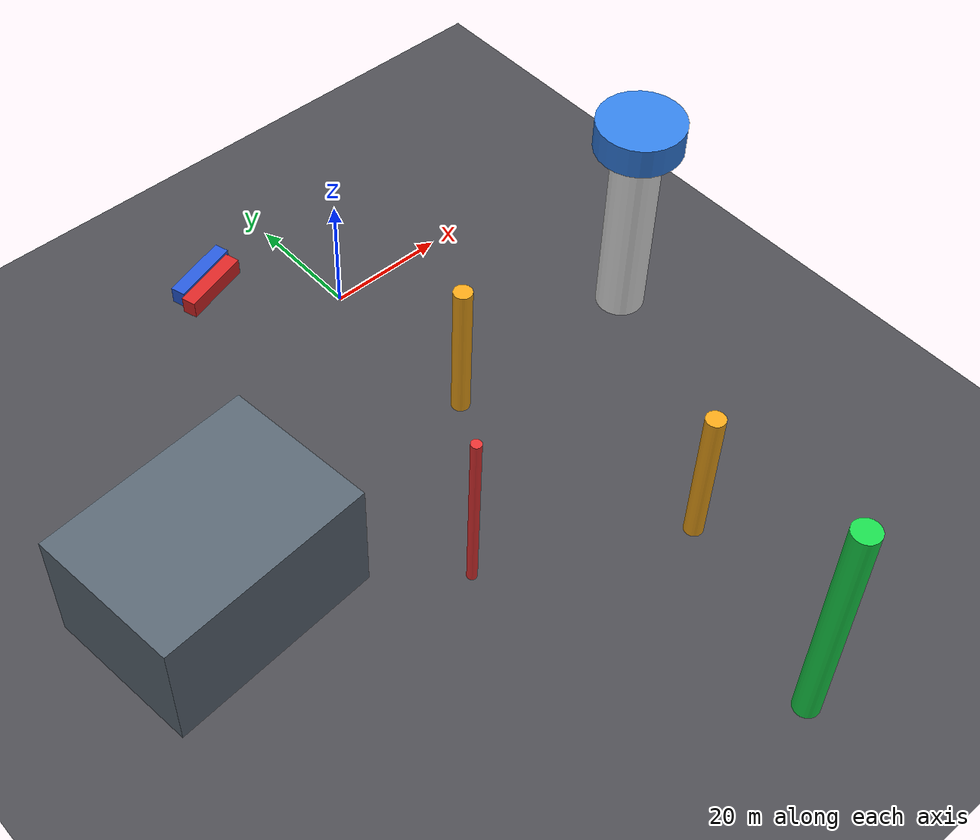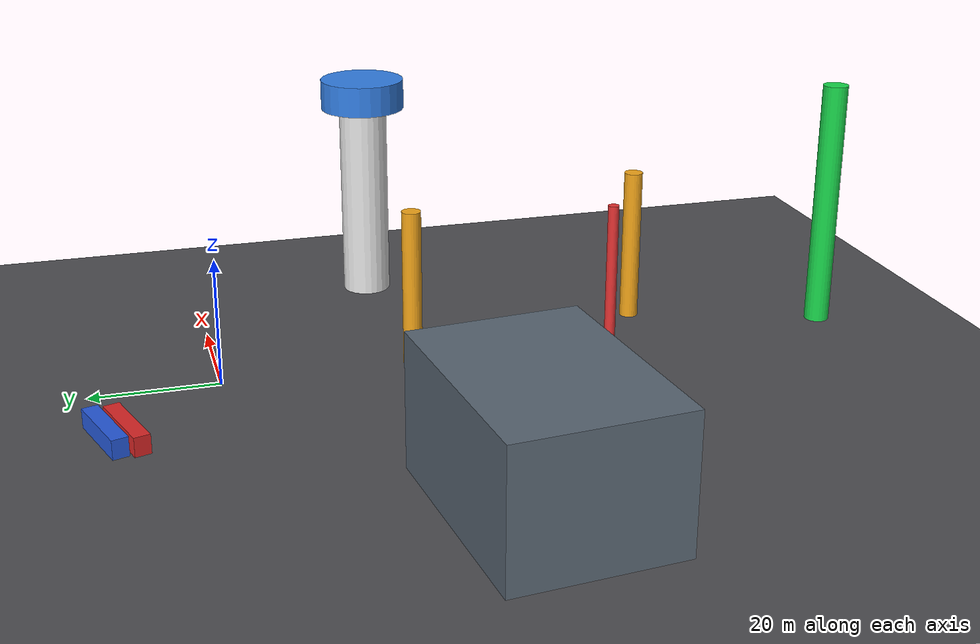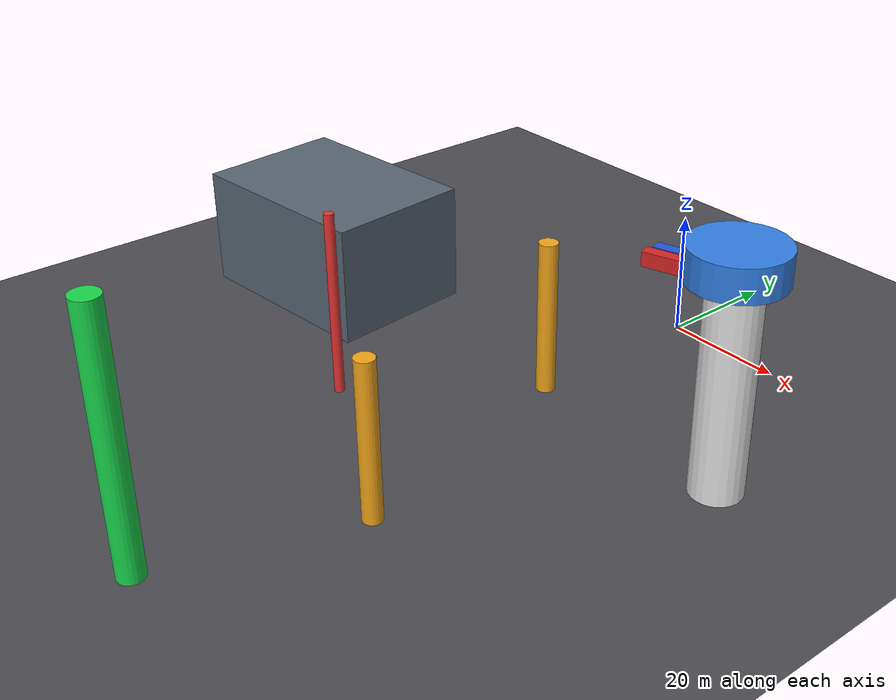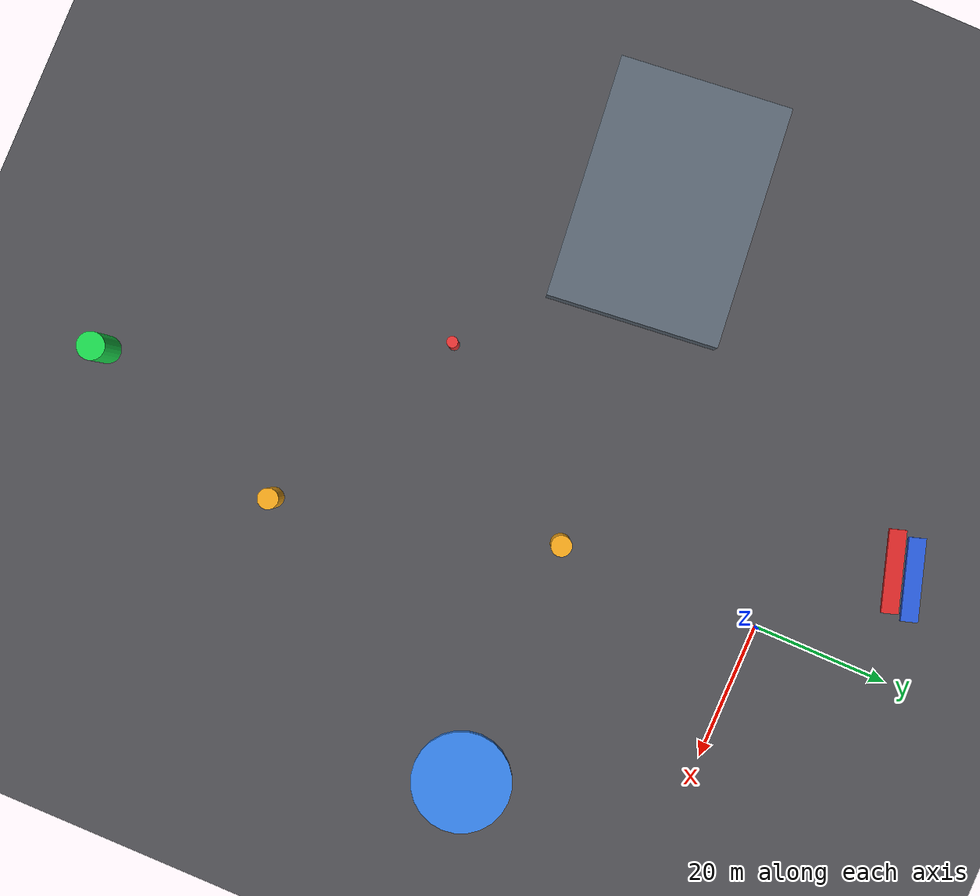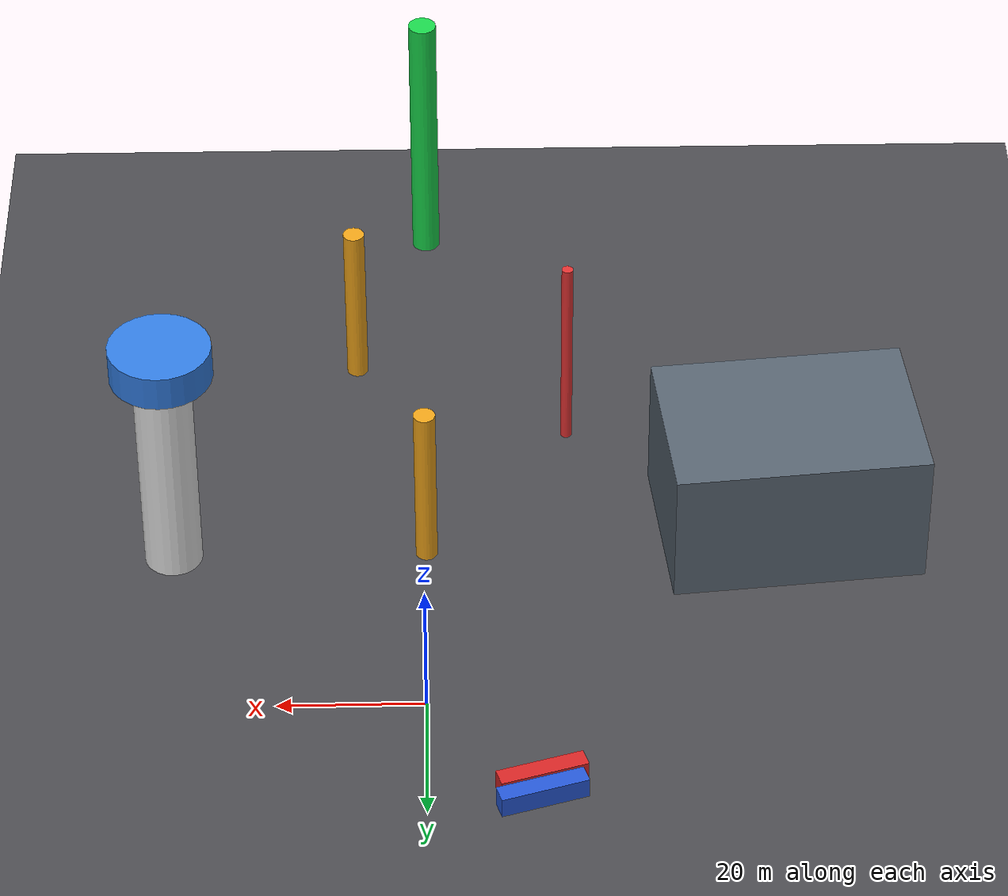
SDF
<sdf version="1.9">
 <world name="airfield_obstacles">
  <physics type="ode">
   <max_step_size>0.004</max_step_size>
   <real_time_factor>1.0</real_time_factor>
   <real_time_update_rate>250</real_time_update_rate>
  </physics>
  <gravity>0 0 -9.8</gravity>
  <magnetic_field>6e-06 2.3e-05 -4.2e-05</magnetic_field>
  <atmosphere type="adiabatic"/>
  <scene>
   <grid>true</grid>
   <ambient>0.6 0.6 0.6 1</ambient>
   <background>0.7 0.8 0.9 1</background>
   <shadows>true</shadows>
  </scene>
  <light name="sun" type="directional">
   <pose>0 0 500 0 0 0</pose>
   <intensity>1.2</intensity>
   <direction>0.3 0.4 -0.8</direction>
   <diffuse>0.95 0.95 0.95 1</diffuse>
   <specular>0.3 0.3 0.3 1</specular>
  </light>
  <model name="airfield_ground">
   <static>true</static>
   <link name="link">
    <collision name="collision">
     <geometry><plane><normal>0 0 1</normal><size>600 600</size></plane></geometry>
    </collision>
    <visual name="visual">
     <geometry><plane><normal>0 0 1</normal><size>600 600</size></plane></geometry>
     <material>
      <ambient>0.25 0.25 0.28 1</ambient>
      <diffuse>0.3 0.3 0.32 1</diffuse>
      <specular>0.1 0.1 0.1 1</specular>
     </material>
    </visual>
   </link>
  </model>
  <model name="control_tower">
   <static>true</static>
   <pose>35 -30 17.5 0 0 0</pose>
   <link name="tower_body">
    <collision name="tower_col">
     <geometry><cylinder><radius>4.0</radius><length>35.0</length></cylinder></geometry>
    </collision>
    <visual name="tower_vis">
     <geometry><cylinder><radius>4.0</radius><length>35.0</length></cylinder></geometry>
     <material><ambient>0.85 0.85 0.85 1</ambient><diffuse>0.9 0.9 0.9 1</diffuse></material>
    </visual>
   </link>
   <link name="observation_deck">
    <pose>0 0 17.5 0 0 0</pose>
    <visual name="deck_vis">
     <geometry><cylinder><radius>7.0</radius><length>5.0</length></cylinder></geometry>
     <material><ambient>0.2 0.4 0.8 1</ambient><diffuse>0.2 0.5 0.9 1</diffuse></material>
    </visual>
   </link>
  </model>
  <model name="aircraft_hangar">
   <static>true</static>
   <pose>-50 -35 10.0 0 0 0.1</pose>
   <link name="hangar_link">
    <collision name="hangar_col"><geometry><box><size>35.0 25.0 20.0</size></box></geometry></collision>
    <visual name="hangar_vis">
     <geometry><box><size>35.0 25.0 20.0</size></box></geometry>
     <material><ambient>0.3 0.35 0.4 1</ambient><diffuse>0.35 0.4 0.45 1</diffuse></material>
    </visual>
   </link>
  </model>
  <model name="comm_mast">
   <static>true</static>
   <pose>-20 -55 15.0 0 0 0</pose>
   <link name="mast_link">
    <collision name="mast_col">
     <geometry><cylinder><radius>0.8</radius><length>30.0</length></cylinder></geometry>
    </collision>
    <visual name="mast_vis">
     <geometry><cylinder><radius>0.8</radius><length>30.0</length></cylinder></geometry>
     <material><ambient>0.9 0.2 0.2 1</ambient><diffuse>0.9 0.2 0.2 1</diffuse></material>
    </visual>
   </link>
  </model>
  <model name="pylon_1">
   <static>true</static>
   <pose>0 -30 12.5 0 0 0</pose>
   <link name="pylon_link">
    <collision name="col">
     <geometry><cylinder><radius>1.5</radius><length>25.0</length></cylinder></geometry>
    </collision>
    <visual name="vis">
     <geometry><cylinder><radius>1.5</radius><length>25.0</length></cylinder></geometry>
     <material><ambient>0.9 0.6 0.1 1</ambient><diffuse>0.95 0.65 0.1 1</diffuse></material>
    </visual>
   </link>
  </model>
  <model name="pylon_2">
   <static>true</static>
   <pose>10 -70 12.5 0 0 0</pose>
   <link name="pylon_link">
    <collision name="col">
     <geometry><cylinder><radius>1.5</radius><length>25.0</length></cylinder></geometry>
    </collision>
    <visual name="vis">
     <geometry><cylinder><radius>1.5</radius><length>25.0</length></cylinder></geometry>
     <material><ambient>0.9 0.6 0.1 1</ambient><diffuse>0.95 0.65 0.1 1</diffuse></material>
    </visual>
   </link>
  </model>
  <model name="target_marker_tower">
   <static>true</static>
   <pose>0 -100 20.0 0 0 0</pose>
   <link name="target_tower_link">
    <collision name="col">
     <geometry><cylinder><radius>2.0</radius><length>40.0</length></cylinder></geometry>
    </collision>
    <visual name="vis">
     <geometry><cylinder><radius>2.0</radius><length>40.0</length></cylinder></geometry>
     <material><ambient>0.1 0.8 0.3 1</ambient><diffuse>0.1 0.85 0.3 1</diffuse></material>
    </visual>
   </link>
  </model>
  <model name="cargo_container_1">
   <static>true</static>
   <pose>-15 15 1.5 0 0 0.3</pose>
   <link name="link">
    <collision name="col"><geometry><box><size>12.0 2.5 3.0</size></box></geometry></collision>
    <visual name="vis">
     <geometry><box><size>12.0 2.5 3.0</size></box></geometry>
     <material><ambient>0.8 0.1 0.1 1</ambient><diffuse>0.85 0.15 0.15 1</diffuse></material>
    </visual>
   </link>
  </model>
  <model name="cargo_container_2">
   <static>true</static>
   <pose>-15 18 1.5 0 0 0.3</pose>
   <link name="link">
    <collision name="col"><geometry><box><size>12.0 2.5 3.0</size></box></geometry></collision>
    <visual name="vis">
     <geometry><box><size>12.0 2.5 3.0</size></box></geometry>
     <material><ambient>0.1 0.3 0.8 1</ambient><diffuse>0.15 0.35 0.85 1</diffuse></material>
    </visual>
   </link>
  </model>
  <spherical_coordinates>
   <surface_model>EARTH_WGS84</surface_model>
   <world_frame_orientation>ENU</world_frame_orientation>
   <latitude_deg>12.9716</latitude_deg>
   <longitude_deg>77.5946</longitude_deg>
   <elevation>920.0</elevation>
  </spherical_coordinates>
 </world>
</sdf>
